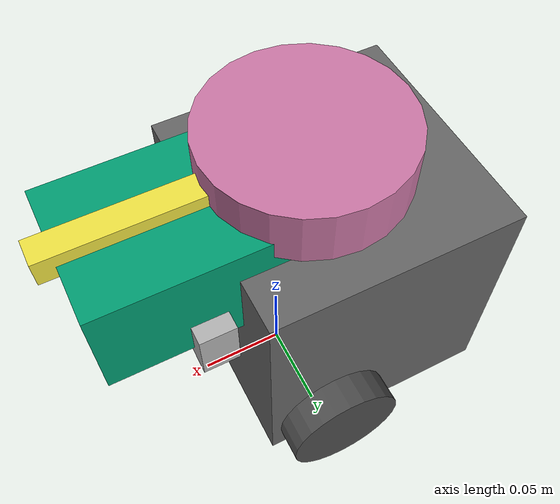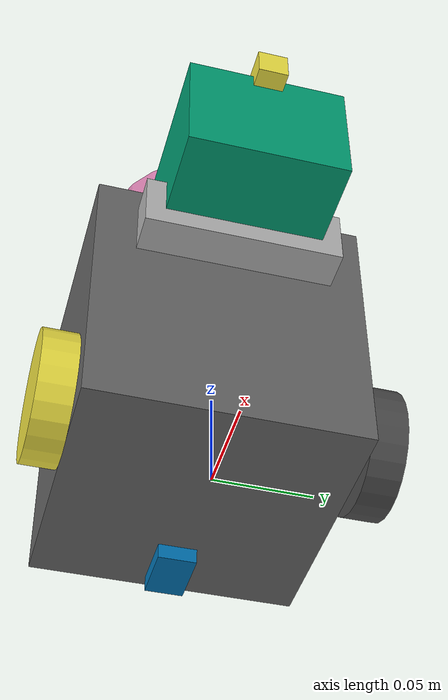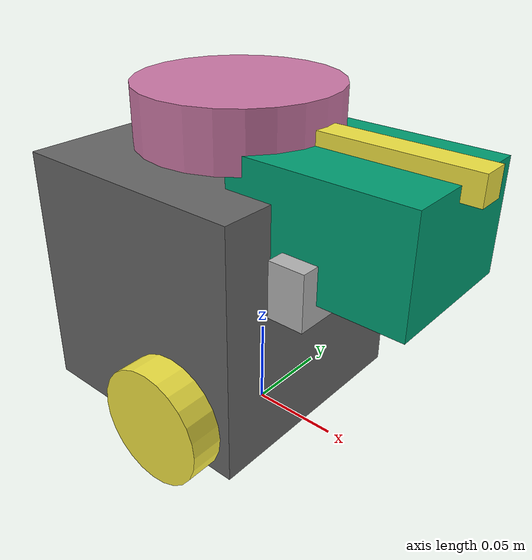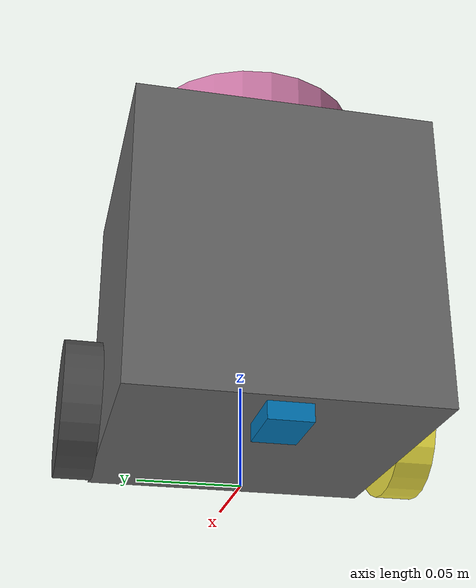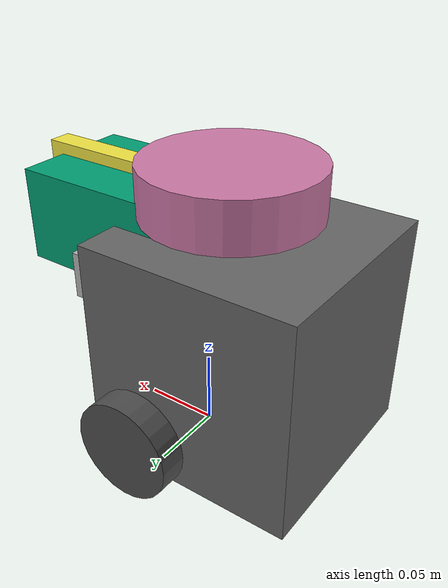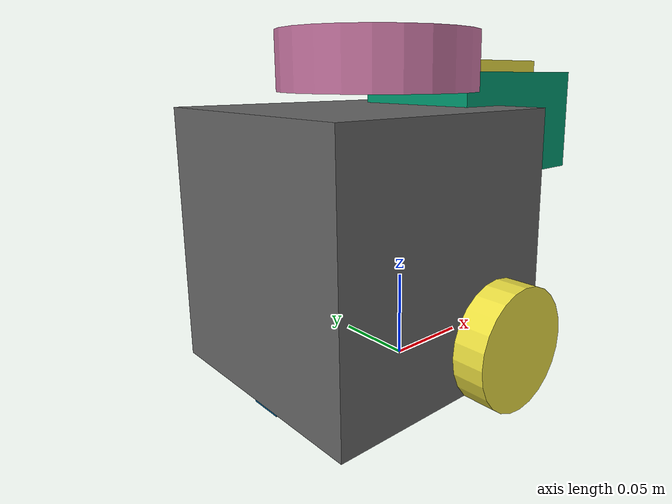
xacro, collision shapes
<?xml version="1.0"?>
<robot name="turtlebot3_burger" xmlns:xacro="http://www.ros.org/wiki/xacro">
    <xacro:macro name="turtlebot_catapaf" params="prefix">

        <!-- Materials -->
        <material name="black">
            <color rgba="0 0 0 1" />
        </material>
        <material name="dark">
            <color rgba="0.3 0.3 0.3 1" />
        </material>
        <material name="light_black">
            <color rgba="0.4 0.4 0.4 1" />
        </material>
        <material name="blue">
            <color rgba="0 0 0.8 1" />
        </material>
        <material name="green">
            <color rgba="0 0.8 0 1" />
        </material>
        <material name="grey">
            <color rgba="0.5 0.5 0.5 1" />
        </material>
        <material name="orange">
            <color rgba="1 0.4235 0.0392 1" />
        </material>
        <material name="brown">
            <color rgba="0.8706 0.8118 0.7647 1" />
        </material>
        <material name="red">
            <color rgba="0.8 0 0 1" />
        </material>
        <material name="white">
            <color rgba="1 1 1 1" />
        </material>

        <!-- Base footprint → base_link -->
        <link name="base_footprint" />

        <joint name="base_joint" type="fixed">
            <parent link="base_footprint" />
            <child link="base_link" />
            <origin xyz="0 0 0.010" rpy="0 0 0" />
        </joint>

        <link name="base_link">
            <visual>
                <origin xyz="-0.032 0 0" rpy="0 0 0" />
                <geometry>
                    <mesh filename="package://catapaf_description/meshes/bases/burger_base.stl"
                        scale="0.001 0.001 0.001" />
                </geometry>
                <material name="light_black" />
            </visual>

            <collision>
                <origin xyz="-0.032 0 0.070" />
                <geometry>
                    <box size="0.140 0.140 0.143" />
                </geometry>
            </collision>

            <inertial>
                <origin xyz="-0.033 0 0.07" />
                <mass value="0.82573504" />
                <inertia ixx="0.0022124416" ixy="0" ixz="0"
                    iyy="0.0021193702" iyz="0" izz="0.0020064271" />
            </inertial>
        </link>

        <!-- Wheels -->

        <joint name="wheel_left_joint" type="continuous">
            <parent link="base_link" />
            <child link="wheel_left_link" />
            <origin xyz="0 0.08 0.023" rpy="-1.57 0 0" />
            <axis xyz="0 0 1" />
        </joint>

        <link name="wheel_left_link">
            <visual>
                <origin rpy="1.57 0 0" />
                <geometry>
                    <mesh filename="package://catapaf_description/meshes/wheels/left_tire.stl"
                        scale="0.001 0.001 0.001" />
                </geometry>
                <material name="dark" />
            </visual>

            <collision>
                <geometry>
                    <cylinder length="0.018" radius="0.033" />
                </geometry>
            </collision>

            <inertial>
                <mass value="0.02849894" />
                <inertia ixx="1.117558e-05" iyy="1.1192413e-05" izz="2.0712558e-05"
                    ixy="0" ixz="0" iyz="0" />
            </inertial>
        </link>

        <joint name="wheel_right_joint" type="continuous">
            <parent link="base_link" />
            <child link="wheel_right_link" />
            <origin xyz="0 -0.08 0.023" rpy="-1.57 0 0" />
            <axis xyz="0 0 1" />
        </joint>

        <link name="wheel_right_link">
            <visual>
                <origin rpy="1.57 0 0" />
                <geometry>
                    <mesh filename="package://catapaf_description/meshes/wheels/right_tire.stl"
                        scale="0.001 0.001 0.001" />
                </geometry>
            </visual>

            <collision>
                <geometry>
                    <cylinder length="0.018" radius="0.033" />
                </geometry>
            </collision>

            <inertial>
                <origin xyz="0 0 0" />
                <mass value="0.02849894" />
                <inertia
                    ixx="1.1175580e-05" ixy="0.0" ixz="0.0"
                    iyy="1.1192413e-05" iyz="0.0"
                    izz="2.0712558e-05" />
            </inertial>

        </link>

        <!-- Back caster -->
        <joint name="caster_back_joint" type="fixed">
            <parent link="base_link" />
            <child link="caster_back_link" />
            <origin xyz="-0.081 0 -0.004" rpy="-1.57 0 0" />
        </joint>

        <link name="caster_back_link">
            <collision>
                <origin xyz="0 0.001 0" />
                <geometry>
                    <box size="0.030 0.009 0.020" />
                </geometry>
            </collision>
            <inertial>
                <origin xyz="0 0 0" />
                <mass value="0.005" />
                <inertia
                    ixx="1e-07" ixy="0.0" ixz="0.0"
                    iyy="1e-07" iyz="0.0"
                    izz="1e-07" />
            </inertial>

        </link>

        <!-- IMU -->
        <joint name="imu_joint" type="fixed">
            <parent link="base_link" />
            <child link="imu_link" />
            <origin xyz="-0.032 0 0.068" />
        </joint>
        <link name="imu_link" />

        <!-- Lidar -->
        <joint name="scan_joint" type="fixed">
            <parent link="base_link" />
            <child link="base_scan" />
            <origin xyz="-0.032 0 0.172" />
        </joint>

        <link name="base_scan">
            <visual>
                <geometry>
                    <mesh filename="package://catapaf_description/meshes/sensors/lds.stl"
                        scale="0.001 0.001 0.001" />
                </geometry>
            </visual>
            <collision>
                <origin xyz="0.015 0 -0.0065" />
                <geometry>
                    <cylinder radius="0.055" length="0.0315" />
                </geometry>
            </collision>
        </link>

        <!-- OAK-D Pro Camera -->
        <link name="oak_d_pro_camera">
            <visual>
                <geometry>
                    <mesh filename="package://catapaf_description/meshes/sensors/OAK-D-PRO.stl" />
                </geometry>
            </visual>

            <collision>
                <origin xyz="0 -0.005 -0.01" />
                <geometry>
                    <box size="0.1 0.03 0.02" />
                </geometry>
            </collision>

            <inertial>
                <origin xyz="0 0 0" />
                <mass value="0.091" />
                <inertia
                    ixx="1e-4" ixy="0.0" ixz="0.0"
                    iyy="1e-4" iyz="0.0"
                    izz="1e-4" />
            </inertial>
        </link>

        <joint name="joint_oak_d_pro_camera" type="fixed">
            <parent link="base_link" />
            <child link="oak_d_pro_camera" />
            <origin xyz="0.065 0 0.11" rpy="1.57 0 1.57" />
        </joint>

        <link name="oak_d_pro_color_optical_frame" />
        <joint name="joint_oak_d_pro_color_optical_frame" type="fixed">
            <parent link="oak_d_pro_camera" />
            <child link="oak_d_pro_color_optical_frame" />
            <origin rpy="-1.5708 0 -1.5708" />
        </joint>

        <link name="oak_d_pro_depth_optical_frame" />
        <joint name="oak_d_pro_depth_optical_frame" type="fixed">
            <parent link="oak_d_pro_camera" />
            <child link="oak_d_pro_depth_optical_frame" />
            <origin rpy="-1.5708 0 -1.5708" />
        </joint>

        <!-- CATAPAF BASE -->
        <link name="catapaf_base">
            <visual>
                <geometry>
                    <mesh filename="package://catapaf_description/meshes/catapaf/baseEtServo.stl" />
                </geometry>
            </visual>
            <collision>
                <geometry>
                    <box size="0.10 0.08 0.06" />
                </geometry>
            </collision>
            <inertial>
                <origin xyz="0 0 0" />
                <mass value="0.15" />
                <inertia
                    ixx="0.0002" ixy="0" ixz="0"
                    iyy="0.0002" iyz="0"
                    izz="0.0002" />
            </inertial>

        </link>

        <joint name="catapaf_base_mount" type="fixed">
            <parent link="base_link" />
            <child link="catapaf_base" />
            <origin xyz="0.06 0 0.13" />
        </joint>

        <!-- CATAPAF ARM -->
        <link name="catapaf_arm">
            <visual>
                <geometry>
                    <mesh filename="package://catapaf_description/meshes/catapaf/catapaf.stl" />
                </geometry>
            </visual>

            <collision>
                <geometry>
                    <box size="0.12 0.015 0.015" />
                </geometry>
            </collision>

            <inertial>
                <origin xyz="0 0 0" />
                <mass value="0.05" />
                <inertia
                    ixx="0.00005" ixy="0" ixz="0"
                    iyy="0.00005" iyz="0"
                    izz="0.00005" />
            </inertial>

        </link>

        <joint name="catapaf_joint" type="revolute">
            <parent link="catapaf_base" />
            <child link="catapaf_arm" />
            <origin xyz="0 0 0.03" />
            <axis xyz="0 1 0" />
            <limit lower="-1.5" upper="1.3" velocity="5.0" effort="1.0" />
        </joint>

    </xacro:macro>
    <xacro:turtlebot_catapaf prefix="" />
</robot>

<!-- appel direct si utilisé comme fichier URDF principal -->
